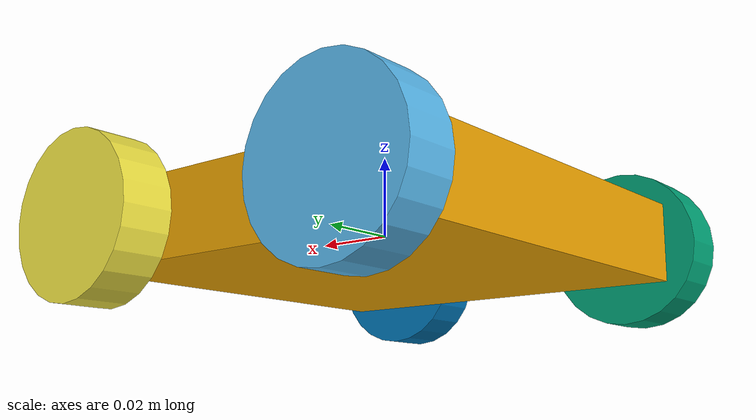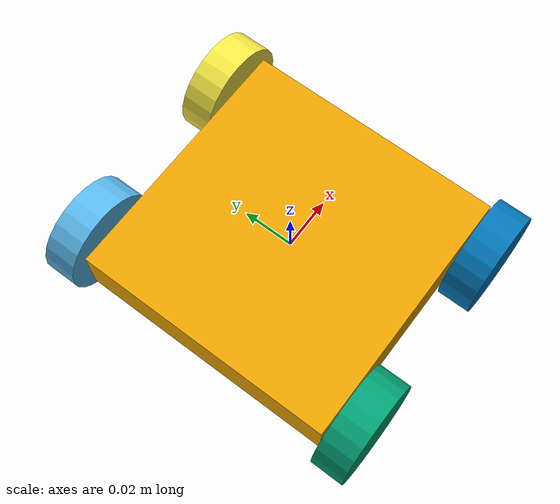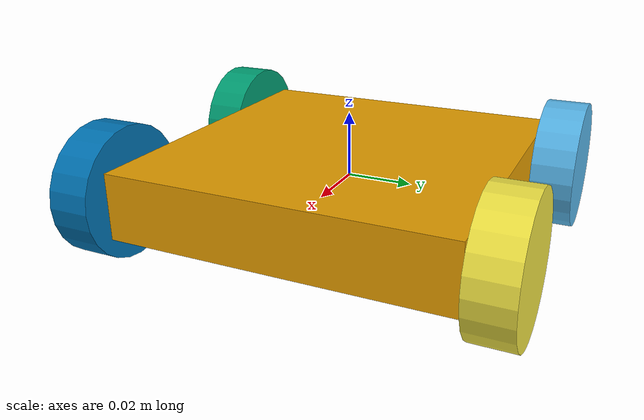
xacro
<?xml version='1.0'?>

<robot name="robot" xmlns:xacro="http://www.ros.org/wiki/xacro">

  <xacro:include filename="$(find myrobot_description)/urdf/myrobot.gazebo" />
  <xacro:include filename="$(find myrobot_description)/urdf/materials.xacro" />
  <xacro:include filename="$(find myrobot_description)/urdf/macros.xacro" />

  <gazebo>
    <plugin name="differential_drive_controller" filename="libgazebo_ros_diff_drive.so">
      <legacyMode>false</legacyMode>
      <alwaysOn>true</alwaysOn>
      <updateRate>20</updateRate>
      <leftJoint>left_back_wheel_hinge</leftJoint>
      <rightJoint>right_back_wheel_hinge</rightJoint>
      <wheelSeparation>0.1608</wheelSeparation>
      <wheelDiameter>0.04</wheelDiameter>
      <wheelTorque>5</wheelTorque>
      <commandTopic>robot1/cmd_vel</commandTopic>
      <odometryTopic>robot1/odom</odometryTopic>
      <odometryFrame>grid3</odometryFrame>
      <robotBaseFrame>robot1/chassis</robotBaseFrame>
    </plugin>
  </gazebo>

    <link name="robot1/chassis">
    <pose>0 0 0.1 0 0 0</pose>
    <inertial>
      <mass value="25"/>
      <origin rpy=" 0 0 0" xyz="0.0 0 0.1"/>
      <inertia ixx="0.5" ixy="0" ixz="0" iyy="1.0" iyz="0" izz="0.1"/>
    </inertial>
    <collision name="collision">
            <surface>
        <friction>
          <ode>
            <mu>1</mu>
            <mu2>1</mu2>
          </ode>
        </friction>
      </surface>
      <geometry>
        <box size="0.1016 .1016 .02"/>
      </geometry>
    </collision>
    <visual name="chassis_visual">
      <origin rpy=" 0 0 0" xyz="0 0 0"/>
      <geometry>
        <box size="0.1016 .1016 .02"/>
      </geometry>
    </visual>
  </link>
  <link name="robot1/left_back_wheel">
    <!--origin xyz="0.1 0.13 0.1" rpy="0 1.5707 1.5707"/-->
    <collision name="collision">
            <surface>
        <friction>
          <ode>
            <mu>1</mu>
            <mu2>1</mu2>
          </ode>
        </friction>
      </surface>
      <origin rpy="0 1.5707 1.5707" xyz="0 0 0"/>
      <geometry>
        <cylinder length="0.0127" radius="0.02"/>
      </geometry>
    </collision>
    <visual name="left_back_wheel_visual">
      <origin rpy="0 1.5707 1.5707" xyz="0 0 0"/>
      <geometry>
        <cylinder length="0.0127" radius="0.02"/>
      </geometry>
    </visual>
    <inertial>
      <origin rpy="0 1.5707 1.5707" xyz="0 0 0"/>
      <mass value="10"/>
      <cylinder_inertia h="0.0127" m="1" r="0.05"/>
      <inertia ixx="1.0" ixy="0.0" ixz="0.0" iyy="1.0" iyz="0.0" izz="1.0"/>
    </inertial>
  </link>
  <link name="robot1/right_back_wheel">
    <!--origin xyz="0.1 -0.13 0.1" rpy="0 1.5707 1.5707"/-->
    <collision name="collision">
            <surface>
        <friction>
          <ode>
            <mu>1</mu>
            <mu2>1</mu2>
          </ode>
        </friction>
      </surface>
      <origin rpy="0 1.5707 1.5707" xyz="0 0 0"/>
      <geometry>
        <cylinder length="0.0127" radius="0.02"/>
      </geometry>
    </collision>
    <visual name="right_back_wheel_visual">
      <origin rpy="0 1.5707 1.5707" xyz="0 0 0"/>
      <geometry>
        <cylinder length="0.0127" radius="0.02"/>
      </geometry>
    </visual>
    <inertial>
      <origin rpy="0 1.5707 1.5707" xyz="0 0 0"/>
      <mass value="10"/>
      <cylinder_inertia h="0.0127" m="1" r="0.05"/>
      <inertia ixx="1.0" ixy="0.0" ixz="0.0" iyy="1.0" iyz="0.0" izz="1.0"/>
    </inertial>
  </link>
    <link name="robot1/left_front_wheel">
    <!--origin xyz="0.1 -0.13 0.1" rpy="0 1.5707 1.5707"/-->
    <collision name="collision">
            <surface>
        <friction>
          <ode>
            <mu>1</mu>
            <mu2>1</mu2>
          </ode>
        </friction>
      </surface>
      <origin rpy="0 1.5707 1.5707" xyz="0 0 0"/>
      <geometry>
        <cylinder length="0.0127" radius="0.02"/>
      </geometry>
    </collision>
    <visual name="left_front_wheel_visual">
      <origin rpy="0 1.5707 1.5707" xyz="0 0 0"/>
      <geometry>
        <cylinder length="0.0127" radius="0.02"/>
      </geometry>
    </visual>
    <inertial>
      <origin rpy="0 1.5707 1.5707" xyz="0 0 0"/>
      <mass value="10"/>
      <cylinder_inertia h="0.127" m="1" r="0.05"/>
      <inertia ixx="1.0" ixy="0.0" ixz="0.0" iyy="1.0" iyz="0.0" izz="1.0"/>
    </inertial>
  </link>
    <link name="robot1/right_front_wheel">
    <!--origin xyz="0.1 -0.13 0.1" rpy="0 1.5707 1.5707"/-->
    <collision name="collision">
            <surface>
        <friction>
          <ode>
            <mu>1</mu>
            <mu2>1</mu2>
          </ode>
        </friction>
      </surface>
      <origin rpy="0 1.5707 1.5707" xyz="0 0 0"/>
      <geometry>
        <cylinder length="0.0127" radius="0.02"/>
      </geometry>
    </collision>
    <visual name="right_front_wheel_visual">
      <origin rpy="0 1.5707 1.5707" xyz="0 0 0"/>
      <geometry>
        <cylinder length="0.0127" radius="0.02"/>
      </geometry>
    </visual>
    <inertial>
      <origin rpy="0 1.5707 1.5707" xyz="0 0 0"/>
      <mass value="10"/>
      <cylinder_inertia h="0.0127" m="1" r="0.05"/>
      <inertia ixx="1.0" ixy="0.0" ixz="0.0" iyy="1.0" iyz="0.0" izz="1.0"/>
    </inertial>
  </link>
  <joint name="left_back_wheel_hinge" type="continuous">
    <origin rpy="0 0 0" xyz="-0.0381 0.0584 0"/>
    <child link="robot1/left_back_wheel"/>
    <parent link="robot1/chassis"/>
    <axis rpy="0 0 0" xyz="0 1 0"/>
    <limit effort="100" velocity="100"/>
    <joint_properties damping="0.7" friction="10"/>
  </joint>
  <joint name="right_back_wheel_hinge" type="continuous">
    <origin rpy="0 0 0" xyz="-0.0381 -0.0584 0"/>
    <child link="robot1/right_back_wheel"/>
    <parent link="robot1/chassis"/>
    <axis rpy="0 0 0" xyz="0 1 0"/>
    <limit effort="100" velocity="100"/>
    <joint_properties damping="0.7" friction="10"/>
  </joint>
    <joint name="left_front_wheel_hinge" type="continuous">
    <origin rpy="0 0 0" xyz="0.0381 0.0584 0"/>
    <child link="robot1/left_front_wheel"/>
    <parent link="robot1/chassis"/>
    <axis rpy="0 0 0" xyz="0 1 0"/>
    <limit effort="100" velocity="100"/>
    <joint_properties damping="0.7" friction="10"/>
  </joint>
  <joint name="right_front_wheel_hinge" type="continuous">
    <origin rpy="0 0 0" xyz="0.0381 -0.0584 0"/>
    <child link="robot1/right_front_wheel"/>
    <parent link="robot1/chassis"/>
    <axis rpy="0 0 0" xyz="0 1 0"/>
    <limit effort="100" velocity="100"/>
    <joint_properties damping="0.7" friction="10"/>
  </joint>
  <gazebo reference="chassis">
        <material>
          robot1/Image
        </material>
  </gazebo>

</robot>
